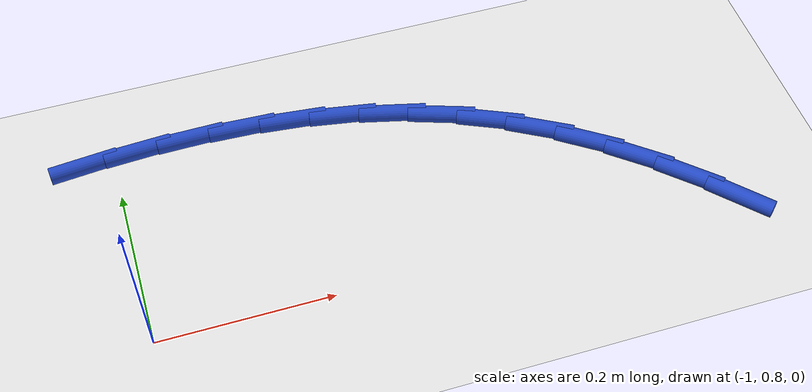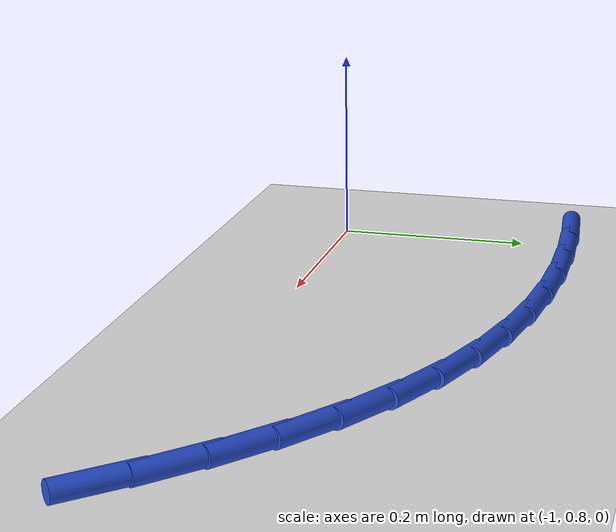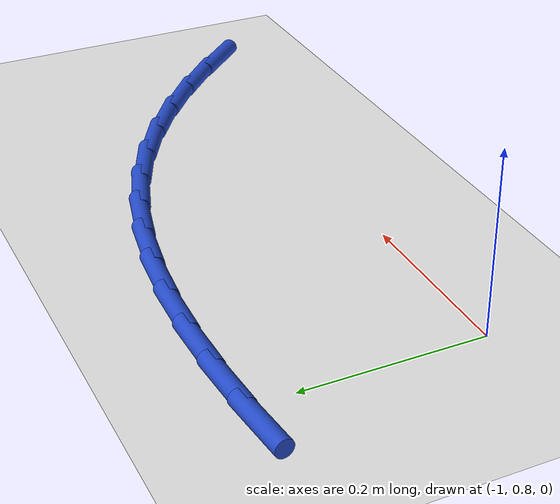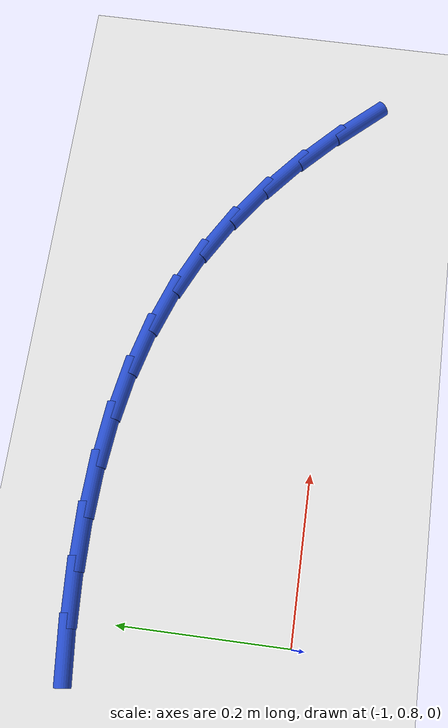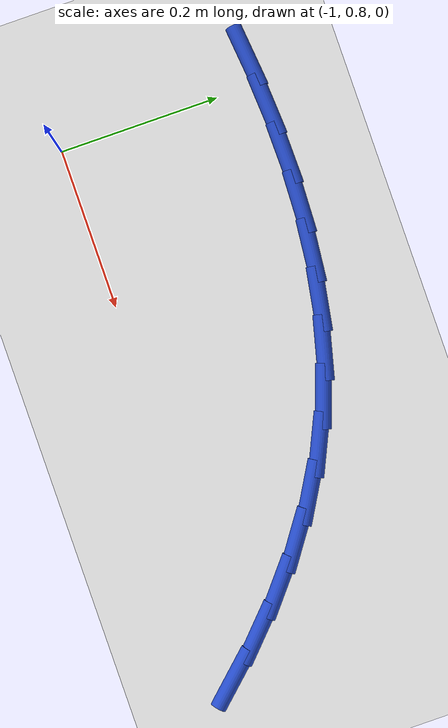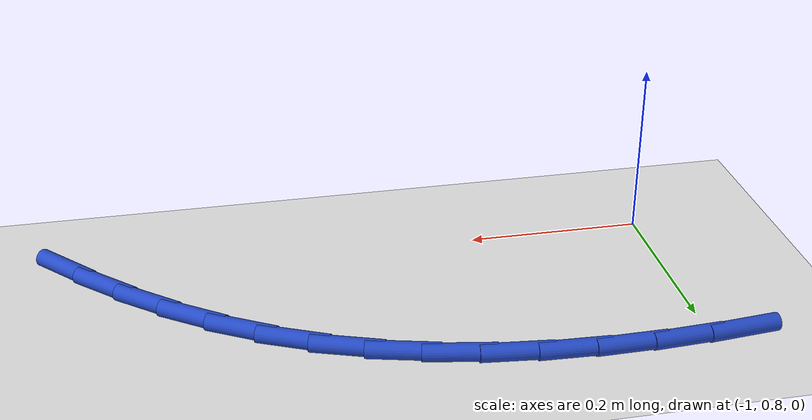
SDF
<sdf version="1.6">
 <world name="default">
  <model name="ground_plane">
   <static>1</static>
   <link name="link">
    <collision name="collision">
     <geometry><plane><normal>0 0 1</normal><size>100 100</size></plane></geometry>
     <surface><friction><ode><mu>100</mu><mu2>50</mu2></ode></friction></surface>
    </collision>
    <visual name="visual">
     <cast_shadows>0</cast_shadows>
     <geometry><plane><normal>0 0 1</normal><size>100 100</size></plane></geometry>
     <material>
      <script><uri>file://media/materials/scripts/gazebo.material</uri><name>Gazebo/WhiteGlow</name></script>
     </material>
    </visual>
   </link>
  </model>
  <model name="line">
   <link name="link_14">
    <pose>-0.3286583618171755 0.7876115439308381 0.01 0 1.57 -0.8232242668866289</pose>
    <collision name="collision">
     <geometry><cylinder><radius>0.01</radius><length>0.08</length></cylinder></geometry>
    </collision>
    <visual name="visual">
     <material>
      <script><name>Gazebo/Blue</name><uri>file://media/materials/scripts/gazebo.material</uri></script>
     </material>
     <geometry><cylinder><radius>0.01</radius><length>0.08</length></cylinder></geometry>
    </visual>
   </link>
   <link name="link_15">
    <pose>-0.37095264072957534 0.8332329163371552 0.01 0 1.57 -0.7600534151501007</pose>
    <collision name="collision">
     <geometry><cylinder><radius>0.01</radius><length>0.08</length></cylinder></geometry>
    </collision>
    <visual name="visual">
     <material>
      <script><name>Gazebo/Blue</name><uri>file://media/materials/scripts/gazebo.material</uri></script>
     </material>
     <geometry><cylinder><radius>0.01</radius><length>0.08</length></cylinder></geometry>
    </visual>
   </link>
   <link name="link_16">
    <pose>-0.41545775508822236 0.8755373922663617 0.01 0 1.57 -0.689727726527155</pose>
    <collision name="collision">
     <geometry><cylinder><radius>0.01</radius><length>0.08</length></cylinder></geometry>
    </collision>
    <visual name="visual">
     <material>
      <script><name>Gazebo/Blue</name><uri>file://media/materials/scripts/gazebo.material</uri></script>
     </material>
     <geometry><cylinder><radius>0.01</radius><length>0.08</length></cylinder></geometry>
    </visual>
   </link>
   <link name="link_17">
    <pose>-0.46216311656062636 0.9140636392601175 0.01 0 1.57 -0.611551409629266</pose>
    <collision name="collision">
     <geometry><cylinder><radius>0.01</radius><length>0.08</length></cylinder></geometry>
    </collision>
    <visual name="visual">
     <material>
      <script><name>Gazebo/Blue</name><uri>file://media/materials/scripts/gazebo.material</uri></script>
     </material>
     <geometry><cylinder><radius>0.01</radius><length>0.08</length></cylinder></geometry>
    </visual>
   </link>
   <link name="link_18">
    <pose>-0.5110581368142972 0.9483503248600822 0.01 0 1.57 -0.5250388901649161</pose>
    <collision name="collision">
     <geometry><cylinder><radius>0.01</radius><length>0.08</length></cylinder></geometry>
    </collision>
    <visual name="visual">
     <material>
      <script><name>Gazebo/Blue</name><uri>file://media/materials/scripts/gazebo.material</uri></script>
     </material>
     <geometry><cylinder><radius>0.01</radius><length>0.08</length></cylinder></geometry>
    </visual>
   </link>
   <link name="link_19">
    <pose>-0.562132227516745 0.9779361166079155 0.01 0 1.57 -0.43040193304890173</pose>
    <collision name="collision">
     <geometry><cylinder><radius>0.01</radius><length>0.08</length></cylinder></geometry>
    </collision>
    <visual name="visual">
     <material>
      <script><name>Gazebo/Blue</name><uri>file://media/materials/scripts/gazebo.material</uri></script>
     </material>
     <geometry><cylinder><radius>0.01</radius><length>0.08</length></cylinder></geometry>
    </visual>
   </link>
   <link name="link_20">
    <pose>-0.6153702791292106 1.002378109974132 0.01 0 1.57 -0.3352934334528969</pose>
    <collision name="collision">
     <geometry><cylinder><radius>0.01</radius><length>0.08</length></cylinder></geometry>
    </collision>
    <visual name="visual">
     <material>
      <script><name>Gazebo/Blue</name><uri>file://media/materials/scripts/gazebo.material</uri></script>
     </material>
     <geometry><cylinder><radius>0.01</radius><length>0.08</length></cylinder></geometry>
    </visual>
   </link>
   <link name="link_21">
    <pose>-0.6706567639691908 1.0216426935024858 0.01 0 1.57 -0.24785514940187425</pose>
    <collision name="collision">
     <geometry><cylinder><radius>0.01</radius><length>0.08</length></cylinder></geometry>
    </collision>
    <visual name="visual">
     <material>
      <script><name>Gazebo/Blue</name><uri>file://media/materials/scripts/gazebo.material</uri></script>
     </material>
     <geometry><cylinder><radius>0.01</radius><length>0.08</length></cylinder></geometry>
    </visual>
   </link>
   <link name="link_22">
    <pose>-0.7277776801769001 1.036097625421059 0.01 0 1.57 -0.1691273118497786</pose>
    <collision name="collision">
     <geometry><cylinder><radius>0.01</radius><length>0.08</length></cylinder></geometry>
    </collision>
    <visual name="visual">
     <material>
      <script><name>Gazebo/Blue</name><uri>file://media/materials/scripts/gazebo.material</uri></script>
     </material>
     <geometry><cylinder><radius>0.01</radius><length>0.08</length></cylinder></geometry>
    </visual>
   </link>
   <link name="link_23">
    <pose>-0.7865148935261518 1.0461275070191647 0.01 0 1.57 -0.09927175896483682</pose>
    <collision name="collision">
     <geometry><cylinder><radius>0.01</radius><length>0.08</length></cylinder></geometry>
    </collision>
    <visual name="visual">
     <material>
      <script><name>Gazebo/Blue</name><uri>file://media/materials/scripts/gazebo.material</uri></script>
     </material>
     <geometry><cylinder><radius>0.01</radius><length>0.08</length></cylinder></geometry>
    </visual>
   </link>
   <link name="link_24">
    <pose>-0.8466502697907583 1.0521169395861159 0.01 0 1.57 -0.038040344017932125</pose>
    <collision name="collision">
     <geometry><cylinder><radius>0.01</radius><length>0.08</length></cylinder></geometry>
    </collision>
    <visual name="visual">
     <material>
      <script><name>Gazebo/Blue</name><uri>file://media/materials/scripts/gazebo.material</uri></script>
     </material>
     <geometry><cylinder><radius>0.01</radius><length>0.08</length></cylinder></geometry>
    </visual>
   </link>
   <link name="link_25">
    <pose>-0.9079656747445337 1.0544505244112263 0.01 0 1.57 0.015055097008591995</pose>
    <collision name="collision">
     <geometry><cylinder><radius>0.01</radius><length>0.08</length></cylinder></geometry>
    </collision>
    <visual name="visual">
     <material>
      <script><name>Gazebo/Blue</name><uri>file://media/materials/scripts/gazebo.material</uri></script>
     </material>
     <geometry><cylinder><radius>0.01</radius><length>0.08</length></cylinder></geometry>
    </visual>
   </link>
   <link name="link_26">
    <pose>-0.9702429741612909 1.053512862783809 0.01 0 1.57 0.060608674523938345</pose>
    <collision name="collision">
     <geometry><cylinder><radius>0.01</radius><length>0.08</length></cylinder></geometry>
    </collision>
    <visual name="visual">
     <material>
      <script><name>Gazebo/Blue</name><uri>file://media/materials/scripts/gazebo.material</uri></script>
     </material>
     <geometry><cylinder><radius>0.01</radius><length>0.08</length></cylinder></geometry>
    </visual>
   </link>
   <link name="link_27">
    <pose>-1.0332640338148436 1.0496885559931781 0.01 0 1.57 0.0992274215818236</pose>
    <collision name="collision">
     <geometry><cylinder><radius>0.01</radius><length>0.08</length></cylinder></geometry>
    </collision>
    <visual name="visual">
     <material>
      <script><name>Gazebo/Blue</name><uri>file://media/materials/scripts/gazebo.material</uri></script>
     </material>
     <geometry><cylinder><radius>0.01</radius><length>0.08</length></cylinder></geometry>
    </visual>
   </link>
  </model>
 </world>
</sdf>
